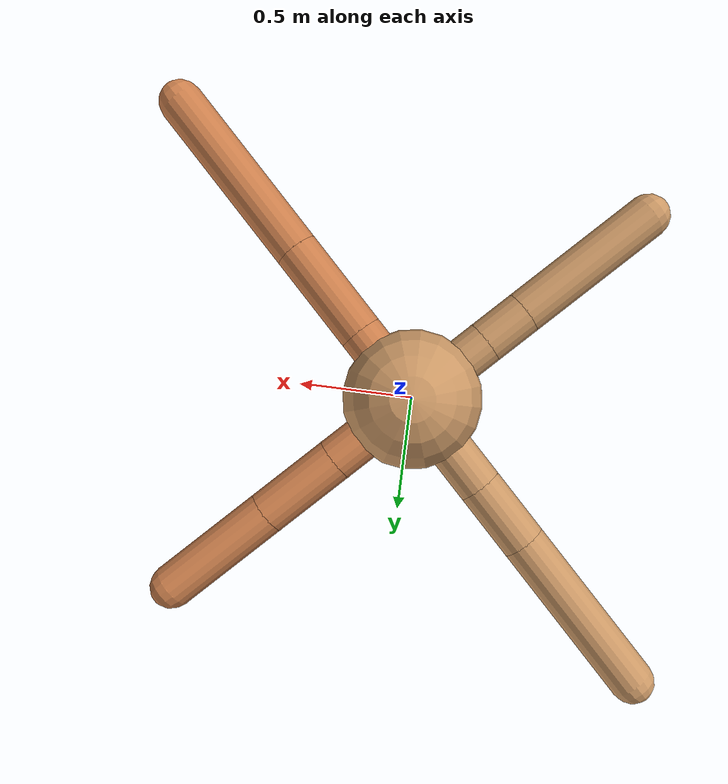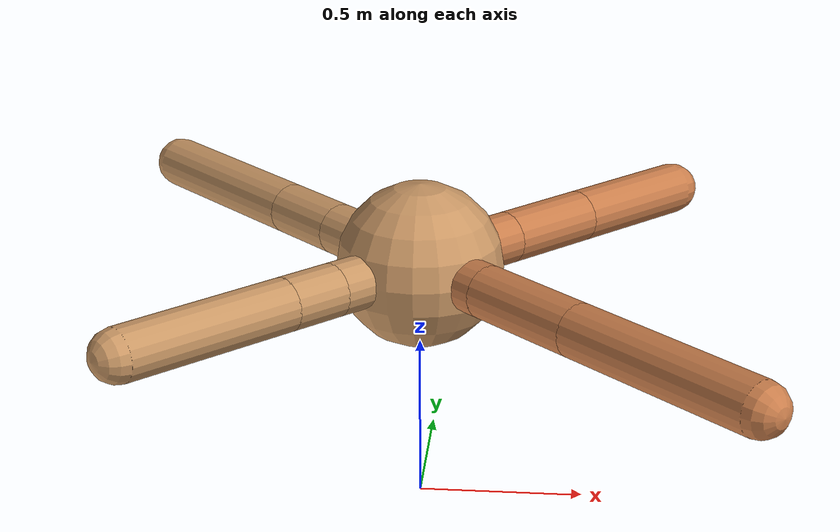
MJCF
<mujoco model="ant">
  <compiler angle="degree" coordinate="local" inertiafromgeom="true" />
  <option integrator="RK4" timestep="0.01" />
  <custom>
    <numeric data="0.0 0.0 0.55 1.0 0.0 0.0 0.0 0.0 1.0 0.0 -1.0 0.0 -1.0 0.0 1.0" name="init_qpos" />
  </custom>
  <default>
    <joint armature="1" damping="1" limited="true" />
    <geom conaffinity="0" condim="3" density="5.0" friction="1.5 0.1 0.1" margin="0.01" rgba="0.8 0.6 0.4 1" />
  </default>
  <worldbody>
    <body name="torso" pos="0 0 0.75">
      <geom name="torso_geom" pos="0 0 0" size="0.25" type="sphere" />

      <body name="front_left_leg" pos="0 0 0">
        <geom fromto="0.0 0.0 0.0 0.24716752410315018 0.24716752410315018 0.0" name="aux_1_geom" size="0.08" type="capsule" rgba=".8 .5 .3 1" />
        <body name="aux_1" pos="0.24716752410315018 0.24716752410315018 0.0">
          <joint axis="0 0 1" name="hip_1" pos="0.0 0.0 0.0" range="-40 40" type="hinge" />
          <geom fromto="0.0 0.0 0.0 0.2155305022512661 0.2155305022512661 0.0" name="left_leg_geom" size="0.08" type="capsule" rgba=".8 .5 .3 1" />
          <body pos="0.2155305022512661 0.2155305022512661 0.0" name="front_left_foot">
            <joint axis="-1 1 0" name="ankle_1" pos="0.0 0.0 0.0" range="30 100" type="hinge" />
            <geom fromto="0.0 0.0 0.0 0.29986170576788523 0.29986170576788523 0.0" name="left_ankle_geom" size="0.08" type="capsule" rgba=".8 .5 .3 1" />
          </body>
        </body>
      </body>
      <body name="front_right_leg" pos="0 0 0">
        <geom fromto="0.0 0.0 0.0 -0.27577859055518456 0.27577859055518456 0.0" name="aux_2_geom" size="0.08" type="capsule" />
        <body name="aux_2" pos="-0.27577859055518456 0.27577859055518456 0.0">
          <joint axis="0 0 1" name="hip_2" pos="0.0 0.0 0.0" range="-40 40" type="hinge" />
          <geom fromto="0.0 0.0 0.0 -0.17754221513106838 0.17754221513106838 0.0" name="right_leg_geom" size="0.08" type="capsule" />
          <body pos="-0.17754221513106838 0.17754221513106838 0.0" name="front_right_foot">
            <joint axis="1 1 0" name="ankle_2" pos="0.0 0.0 0.0" range="-100 -30" type="hinge" />
            <geom fromto="0.0 0.0 0.0 -0.44191821037649215 0.44191821037649215 0.0" name="right_ankle_geom" size="0.08" type="capsule" />
          </body>
        </body>
      </body>
      <body name="left_back_leg" pos="0 0 0">
        <geom fromto="0.0 0.0 0.0 -0.23096785155850186 -0.23096785155850186 0.0" name="aux_3_geom" size="0.08" type="capsule" />
        <body name="aux_3" pos="-0.23096785155850186 -0.23096785155850186 0.0">
          <joint axis="0 0 1" name="hip_3" pos="0.0 0.0 0.0" range="-40 40" type="hinge" />
          <geom fromto="0.0 0.0 0.0 -0.12197854577597994 -0.12197854577597994 0.0" name="back_leg_geom" size="0.08" type="capsule" />
          <body pos="-0.12197854577597994 -0.12197854577597994 0.0" name="left_back_foot">
            <joint axis="-1 1 0" name="ankle_3" pos="0.0 0.0 0.0" range="-100 -30" type="hinge" />
            <geom fromto="0.0 0.0 0.0 -0.3952633554164502 -0.3952633554164502 0.0" name="third_ankle_geom" size="0.08" type="capsule" />
          </body>
        </body>
      </body>
      <body name="right_back_leg" pos="0 0 0">
        <geom fromto="0.0 0.0 0.0 0.21137730627203855 -0.21137730627203855 0.0" name="aux_4_geom" size="0.08" type="capsule" rgba=".8 .5 .3 1" />
        <body name="aux_4" pos="0.21137730627203855 -0.21137730627203855 0.0">
          <joint axis="0 0 1" name="hip_4" pos="0.0 0.0 0.0" range="-40 40" type="hinge" />
          <geom fromto="0.0 0.0 0.0 0.26209323751714847 -0.26209323751714847 0.0" name="rightback_leg_geom" size="0.08" type="capsule" rgba=".8 .5 .3 1" />
          <body pos="0.26209323751714847 -0.26209323751714847 0.0" name="right_back_foot">
            <joint axis="1 1 0" name="ankle_4" pos="0.0 0.0 0.0" range="30 100" type="hinge" />
            <geom fromto="0.0 0.0 0.0 0.4703967717365727 -0.4703967717365727 0.0" name="fourth_ankle_geom" size="0.08" type="capsule" rgba=".8 .5 .3 1" />
          </body>
        </body>
      </body>
    </body>
  </worldbody>
  <actuator>
    <motor ctrllimited="true" ctrlrange="-1.0 1.0" joint="hip_4" gear="150" />
    <motor ctrllimited="true" ctrlrange="-1.0 1.0" joint="ankle_4" gear="150" />
    <motor ctrllimited="true" ctrlrange="-1.0 1.0" joint="hip_1" gear="150" />
    <motor ctrllimited="true" ctrlrange="-1.0 1.0" joint="ankle_1" gear="150" />
    <motor ctrllimited="true" ctrlrange="-1.0 1.0" joint="hip_2" gear="150" />
    <motor ctrllimited="true" ctrlrange="-1.0 1.0" joint="ankle_2" gear="150" />
    <motor ctrllimited="true" ctrlrange="-1.0 1.0" joint="hip_3" gear="150" />
    <motor ctrllimited="true" ctrlrange="-1.0 1.0" joint="ankle_3" gear="150" />
  </actuator>
</mujoco>
